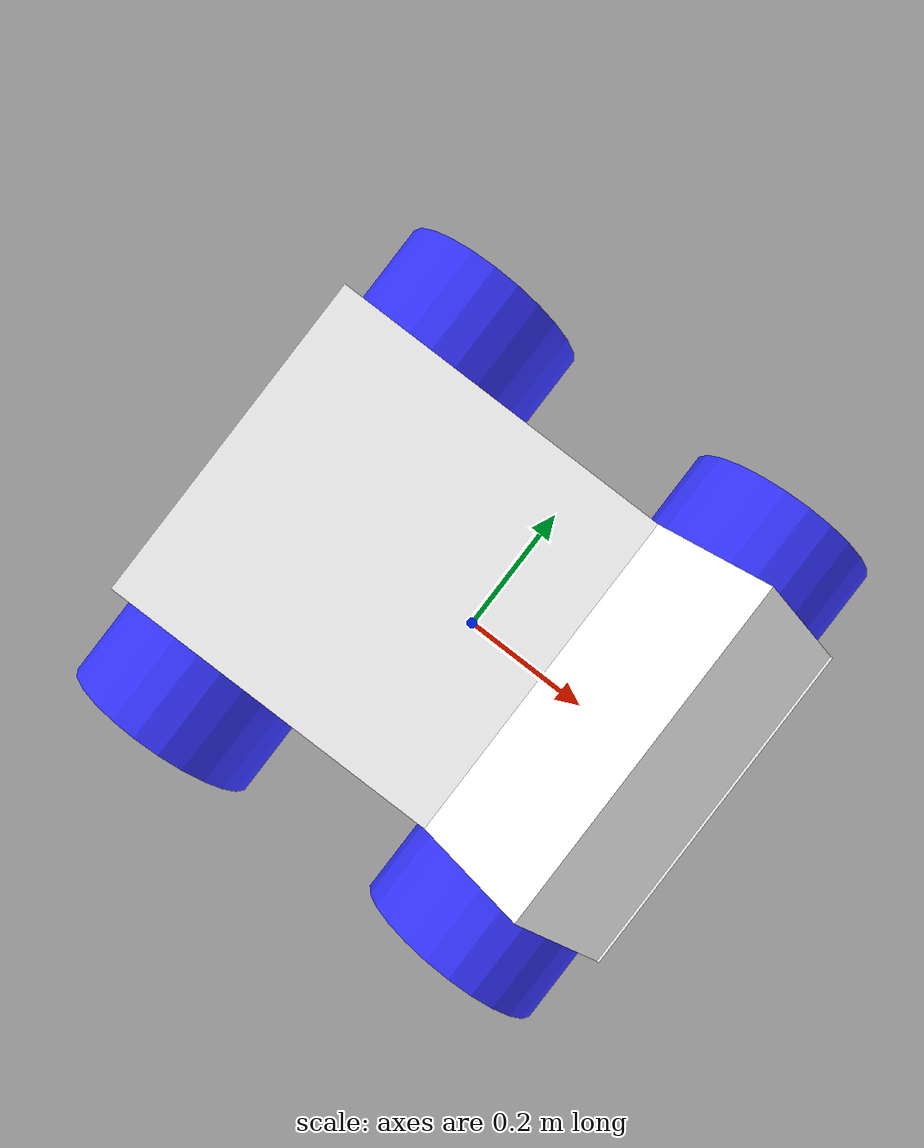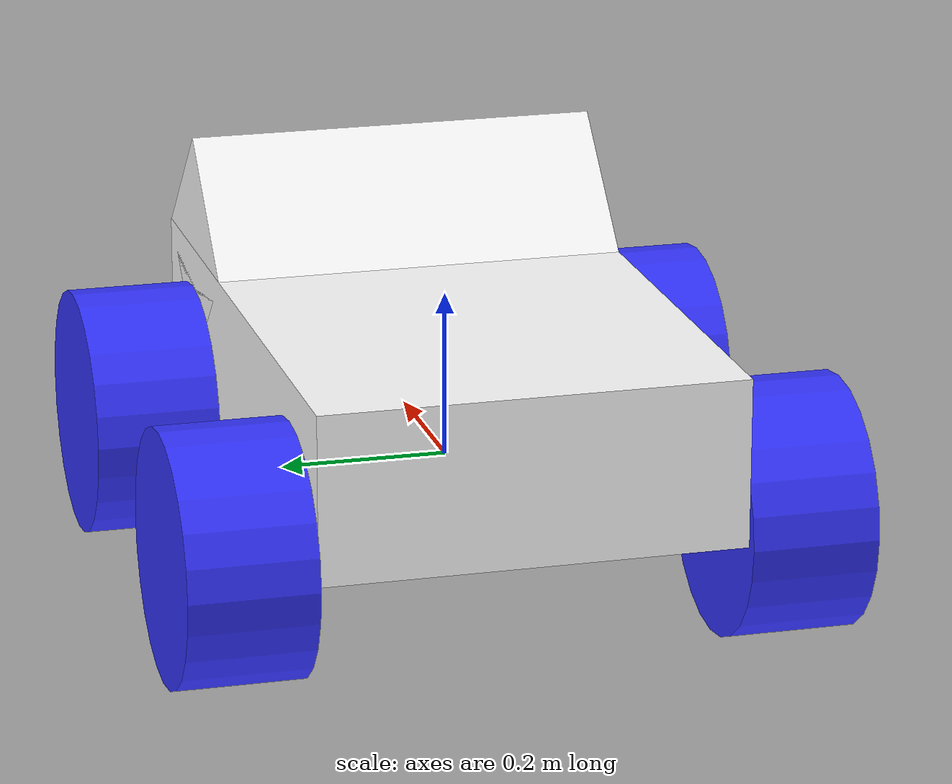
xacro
<?xml version="1.0"?>
<robot xmlns:xacro="http://www.ros.org/wiki/xacro">

    <xacro:include filename="inertial_macros.xacro" />

    <xacro:property name="base_frame_length" value="0.8" />
    <xacro:property name="base_frame_width" value="0.5" />
    <xacro:property name="base_frame_height" value="0.2" />
    <xacro:property name="wheel_radius" value="0.15" />
    <xacro:property name="wheel_width" value="0.15" />
    <xacro:property name="wheel_effort_limit" value="200" />
    <xacro:property name="wheel_velocity_limit" value="50.0" />

    <material name="white">
        <color rgba="1 1 1 1"/>
    </material>

    <material name="orange">
        <color rgba="1 0.3 0.1 1"/>
    </material>

    <material name="blue">
        <color rgba="0.2 0.2 1 1"/>
    </material>

    <material name="black">
        <color rgba="0 0 0 1"/>
    </material>

    <link name="base_link">
    </link>

    <!-- CHASSIS -->

    <joint name="chassis_joint" type="fixed">
        <parent link="base_link"/>
        <child link="chassis"/>
        <origin xyz="-0.4 0 0"/>
    </joint>

    <link name="chassis">
        <visual>
            <origin xyz="${base_frame_length/2} 0 0.1" rpy="0 0 0"/>
            <geometry>
                <box size="${base_frame_length} ${base_frame_width} ${base_frame_height}"/>
            </geometry>
            <material name="white"/>
        </visual>
        <collision>
            <origin xyz="${base_frame_length/2} 0 0.1" rpy="0 0 0"/>
            <geometry>
                <box size="${base_frame_length} ${base_frame_width} ${base_frame_height}"/>
            </geometry>
        </collision>
        <xacro:inertial_box mass="0.3" x="${base_frame_length}" y="${base_frame_width}" z="${base_frame_height}">
            <origin xyz="${base_frame_length/2} 0 0.1" rpy="0 0 0"/>
        </xacro:inertial_box>
    </link>

    <!-- extra blok om voorkant aan te geven-->
    <joint name="chassis_voorkant_joint" type="fixed">
        <parent link="chassis"/>
        <child link="chassis_voorkant"/>
        <origin xyz="${base_frame_length-0.145} 0 0.2"/>
    </joint>
    <link name="chassis_voorkant">
        <visual>
            <origin xyz="0 0 0" rpy="0 ${pi/4} 0"/>
            <geometry>
                <box size="${base_frame_length/4} ${base_frame_width} ${base_frame_length/4}"/>
            </geometry>
            <material name="white"/>
        </visual>

    </link>
    <!-- LEFT WHEEL FRONT-->

    <joint name="left_wheel_joint" type="continuous">
        <parent link="base_link"/>
        <child link="left_wheel"/>
        <origin xyz="${base_frame_length/3} ${base_frame_width/2+wheel_width/2} 0" rpy="-${pi/2} 0 0"/>
        <axis xyz="0 0 1"/>
        <limit effort="${wheel_effort_limit}" velocity="${wheel_velocity_limit}"/>
    </joint>

    <link name="left_wheel">
        <visual>
            <geometry>
                <cylinder length="${wheel_width}" radius="${wheel_radius}" />
            </geometry>
            <material name="blue"/>
        </visual>
        <collision>
            <geometry>
                <sphere radius="${wheel_radius}" />
            </geometry>
        </collision>
        <xacro:inertial_cylinder mass="2" radius="${wheel_radius}" length="${wheel_width}">
            <origin xyz="0 0 0" rpy="0 0 0"/>
        </xacro:inertial_cylinder>
    </link>

    <!-- RIGHT WHEEL FRONT-->

    <joint name="right_wheel_joint" type="continuous">
        <parent link="base_link"/>
        <child link="right_wheel"/>
        <origin xyz="${base_frame_length/3} -${base_frame_width/2+wheel_width/2} 0" rpy="${pi/2} 0 0"/>
        <axis xyz="0 0 -1"/>
        <limit effort="${wheel_effort_limit}" velocity="${wheel_velocity_limit}"/>
    </joint>

    <link name="right_wheel">
        <visual>
            <geometry>
                <cylinder length="${wheel_width}" radius="${wheel_radius}" />
            </geometry>
            <material name="blue"/>
        </visual>
        <collision>
            <geometry>
                <sphere radius="${wheel_radius}" />
            </geometry>
            <material name="blue"/>
        </collision>
        <xacro:inertial_cylinder mass="2" radius="${wheel_radius}" length="${wheel_width}">
            <origin xyz="0 0 0" rpy="0 0 0"/>
        </xacro:inertial_cylinder>
    </link>

    <!-- LEFT WHEEL BACK-->

    <joint name="left_wheel_back_joint" type="continuous">
        <parent link="base_link"/>
        <child link="left_wheel_back"/>
        <origin xyz="-${base_frame_length/3} ${base_frame_width/2+wheel_width/2} 0" rpy="-${pi/2} 0 0"/>
        <axis xyz="0 0 1"/>
        <limit effort="${wheel_effort_limit}" velocity="${wheel_velocity_limit}"/>
    </joint>

    <link name="left_wheel_back">
        <visual>
            <geometry>
                <cylinder length="${wheel_width}" radius="${wheel_radius}" />
            </geometry>
            <material name="blue"/>
        </visual>
        <collision>
            <geometry>
                <sphere radius="${wheel_radius}" />
            </geometry>
        </collision>
        <xacro:inertial_cylinder mass="2" radius="${wheel_radius}" length="${wheel_width}">
            <origin xyz="0 0 0" rpy="0 0 0"/>
        </xacro:inertial_cylinder>
    </link>

    <!-- RIGHT WHEEL BACK-->

    <joint name="right_wheel_back_joint" type="continuous">
        <parent link="base_link"/>
        <child link="right_wheel_back"/>
        <origin xyz="-${base_frame_length/3} -${base_frame_width/2+wheel_width/2} 0" rpy="${pi/2} 0 0"/>
        <axis xyz="0 0 -1"/>
        <limit effort="${wheel_effort_limit}" velocity="${wheel_velocity_limit}"/>
    </joint>

    <link name="right_wheel_back">
        <visual>
            <geometry>
                <cylinder length="${wheel_width}" radius="${wheel_radius}" />
            </geometry>
            <material name="blue"/>
        </visual>
        <collision>
            <geometry>
                <sphere radius="${wheel_radius}" />
            </geometry>
        </collision>
        <xacro:inertial_cylinder mass="2" radius="${wheel_radius}" length="${wheel_width}">
            <origin xyz="0 0 0" rpy="0 0 0"/>
        </xacro:inertial_cylinder>
    </link>

</robot>
